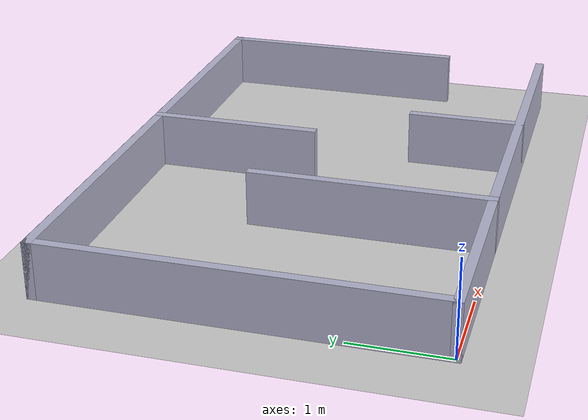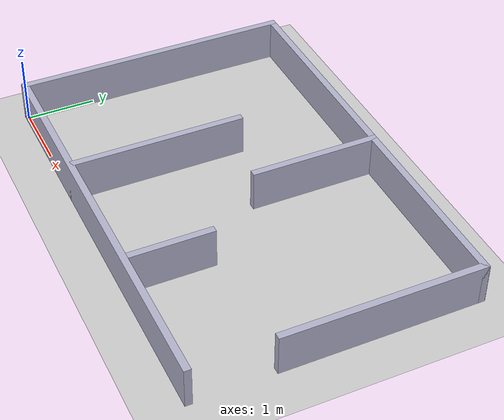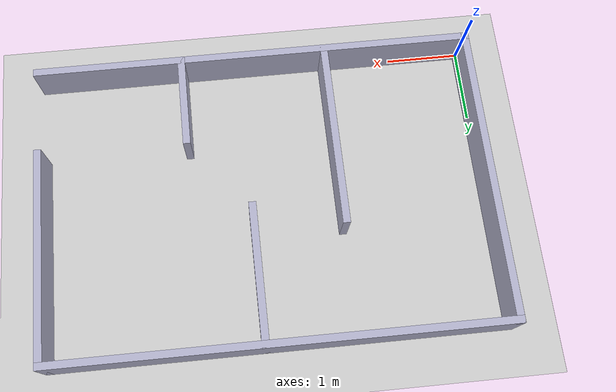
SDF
<?xml version='1.0' encoding='utf-8'?>
<sdf version="1.6">
  <world name="project1_maze">
    <include>
      <uri>model://sun</uri>
    </include>
    <include>
      <uri>model://ground_plane</uri>
    </include>
    <physics name="default_physics" type="ode">
      <max_step_size>0.001</max_step_size>
      <real_time_update_rate>1000</real_time_update_rate>
    </physics>
    <model name="wall_1">
      <static>true</static>
      <pose>3 0 0.3 0 0 0</pose>
      <link name="wall">
        <collision name="collision">
          <geometry>
            <box>
              <size>6.1 0.1 0.6</size>
            </box>
          </geometry>
        </collision>
        <visual name="visual">
          <geometry>
            <box>
              <size>6.1 0.1 0.6</size>
            </box>
          </geometry>
          <material>
            <ambient>0.7 0.7 0.8 1</ambient>
            <diffuse>0.7 0.7 0.8 1</diffuse>
          </material>
        </visual>
      </link>
    </model>
    <model name="wall_2">
      <static>true</static>
      <pose>0 2 0.3 0 0 0</pose>
      <link name="wall">
        <collision name="collision">
          <geometry>
            <box>
              <size>0.1 4.1 0.6</size>
            </box>
          </geometry>
        </collision>
        <visual name="visual">
          <geometry>
            <box>
              <size>0.1 4.1 0.6</size>
            </box>
          </geometry>
          <material>
            <ambient>0.7 0.7 0.8 1</ambient>
            <diffuse>0.7 0.7 0.8 1</diffuse>
          </material>
        </visual>
      </link>
    </model>
    <model name="wall_3">
      <static>true</static>
      <pose>3 4 0.3 0 0 0</pose>
      <link name="wall">
        <collision name="collision">
          <geometry>
            <box>
              <size>6.1 0.1 0.6</size>
            </box>
          </geometry>
        </collision>
        <visual name="visual">
          <geometry>
            <box>
              <size>6.1 0.1 0.6</size>
            </box>
          </geometry>
          <material>
            <ambient>0.7 0.7 0.8 1</ambient>
            <diffuse>0.7 0.7 0.8 1</diffuse>
          </material>
        </visual>
      </link>
    </model>
    <model name="wall_4">
      <static>true</static>
      <pose>6 2.6 0.3 0 0 0</pose>
      <link name="wall">
        <collision name="collision">
          <geometry>
            <box>
              <size>0.1 2.9 0.6</size>
            </box>
          </geometry>
        </collision>
        <visual name="visual">
          <geometry>
            <box>
              <size>0.1 2.9 0.6</size>
            </box>
          </geometry>
          <material>
            <ambient>0.7 0.7 0.8 1</ambient>
            <diffuse>0.7 0.7 0.8 1</diffuse>
          </material>
        </visual>
      </link>
    </model>
    <model name="wall_5">
      <static>true</static>
      <pose>2 1.25 0.3 0 0 0</pose>
      <link name="wall">
        <collision name="collision">
          <geometry>
            <box>
              <size>0.1 2.6 0.6</size>
            </box>
          </geometry>
        </collision>
        <visual name="visual">
          <geometry>
            <box>
              <size>0.1 2.6 0.6</size>
            </box>
          </geometry>
          <material>
            <ambient>0.7 0.7 0.8 1</ambient>
            <diffuse>0.7 0.7 0.8 1</diffuse>
          </material>
        </visual>
      </link>
    </model>
    <model name="wall_6">
      <static>true</static>
      <pose>4 0.6 0.3 0 0 0</pose>
      <link name="wall">
        <collision name="collision">
          <geometry>
            <box>
              <size>0.1 1.3 0.6</size>
            </box>
          </geometry>
        </collision>
        <visual name="visual">
          <geometry>
            <box>
              <size>0.1 1.3 0.6</size>
            </box>
          </geometry>
          <material>
            <ambient>0.7 0.7 0.8 1</ambient>
            <diffuse>0.7 0.7 0.8 1</diffuse>
          </material>
        </visual>
      </link>
    </model>
    <model name="wall_7">
      <static>true</static>
      <pose>3.2 3.1 0.3 0 0 0</pose>
      <link name="wall">
        <collision name="collision">
          <geometry>
            <box>
              <size>0.1 1.9 0.6</size>
            </box>
          </geometry>
        </collision>
        <visual name="visual">
          <geometry>
            <box>
              <size>0.1 1.9 0.6</size>
            </box>
          </geometry>
          <material>
            <ambient>0.7 0.7 0.8 1</ambient>
            <diffuse>0.7 0.7 0.8 1</diffuse>
          </material>
        </visual>
      </link>
    </model>
  </world>
</sdf>
